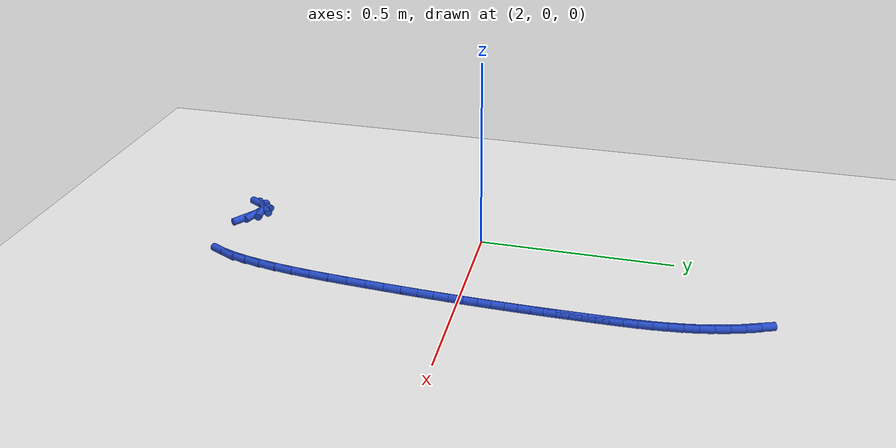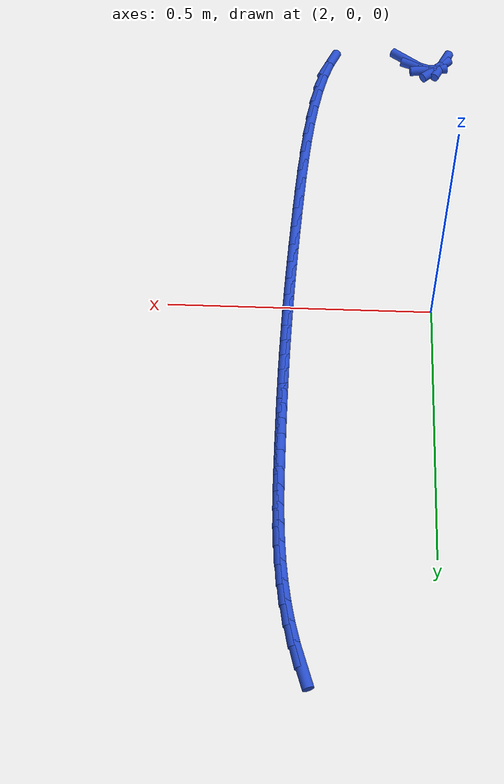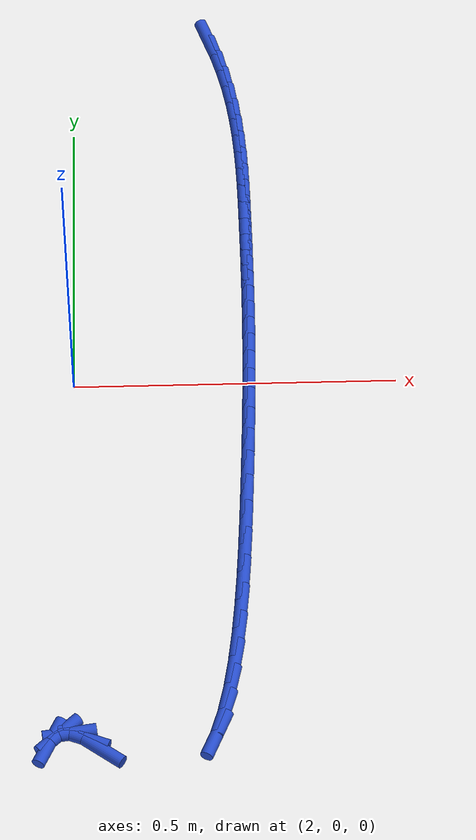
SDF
<sdf version="1.6">
 <world name="default">
  <model name="ground_plane">
   <static>1</static>
   <link name="link">
    <collision name="collision">
     <geometry><plane><normal>0 0 1</normal><size>100 100</size></plane></geometry>
     <surface><friction><ode><mu>100</mu><mu2>50</mu2></ode></friction></surface>
    </collision>
    <visual name="visual">
     <cast_shadows>0</cast_shadows>
     <geometry><plane><normal>0 0 1</normal><size>100 100</size></plane></geometry>
     <material>
      <script><uri>file://media/materials/scripts/gazebo.material</uri><name>Gazebo/WhiteGlow</name></script>
     </material>
    </visual>
   </link>
  </model>
  <model name="line">
   <link name="link_105">
    <pose>2.2223579998884144 0.6914905662198797 0.01 0 1.57 -1.2411940380463125</pose>
    <collision name="collision">
     <geometry><cylinder><radius>0.01</radius><length>0.08</length></cylinder></geometry>
    </collision>
    <visual name="visual">
     <material>
      <script><name>Gazebo/Blue</name><uri>file://media/materials/scripts/gazebo.material</uri></script>
     </material>
     <geometry><cylinder><radius>0.01</radius><length>0.08</length></cylinder></geometry>
    </visual>
   </link>
   <link name="link_106">
    <pose>2.2339339424836546 0.6576507516133844 0.01 0 1.57 -1.296427701397356</pose>
    <collision name="collision">
     <geometry><cylinder><radius>0.01</radius><length>0.08</length></cylinder></geometry>
    </collision>
    <visual name="visual">
     <material>
      <script><name>Gazebo/Blue</name><uri>file://media/materials/scripts/gazebo.material</uri></script>
     </material>
     <geometry><cylinder><radius>0.01</radius><length>0.08</length></cylinder></geometry>
    </visual>
   </link>
   <link name="link_107">
    <pose>2.243558248748905 0.6234573902105164 0.01 0 1.57 -1.3463678781463506</pose>
    <collision name="collision">
     <geometry><cylinder><radius>0.01</radius><length>0.08</length></cylinder></geometry>
    </collision>
    <visual name="visual">
     <material>
      <script><name>Gazebo/Blue</name><uri>file://media/materials/scripts/gazebo.material</uri></script>
     </material>
     <geometry><cylinder><radius>0.01</radius><length>0.08</length></cylinder></geometry>
    </visual>
   </link>
   <link name="link_108">
    <pose>2.2514173075244597 0.5890292019642024 0.01 0 1.57 -1.3909591024430785</pose>
    <collision name="collision">
     <geometry><cylinder><radius>0.01</radius><length>0.08</length></cylinder></geometry>
    </collision>
    <visual name="visual">
     <material>
      <script><name>Gazebo/Blue</name><uri>file://media/materials/scripts/gazebo.material</uri></script>
     </material>
     <geometry><cylinder><radius>0.01</radius><length>0.08</length></cylinder></geometry>
    </visual>
   </link>
   <link name="link_109">
    <pose>2.2576975076506174 0.5544849068273692 0.01 0 1.57 -1.4302271881954076</pose>
    <collision name="collision">
     <geometry><cylinder><radius>0.01</radius><length>0.08</length></cylinder></geometry>
    </collision>
    <visual name="visual">
     <material>
      <script><name>Gazebo/Blue</name><uri>file://media/materials/scripts/gazebo.material</uri></script>
     </material>
     <geometry><cylinder><radius>0.01</radius><length>0.08</length></cylinder></geometry>
    </visual>
   </link>
   <link name="link_110">
    <pose>2.2625852379676723 0.5199432247529437 0.01 0 1.57 -1.4642400373870224</pose>
    <collision name="collision">
     <geometry><cylinder><radius>0.01</radius><length>0.08</length></cylinder></geometry>
    </collision>
    <visual name="visual">
     <material>
      <script><name>Gazebo/Blue</name><uri>file://media/materials/scripts/gazebo.material</uri></script>
     </material>
     <geometry><cylinder><radius>0.01</radius><length>0.08</length></cylinder></geometry>
    </visual>
   </link>
   <link name="link_111">
    <pose>2.266266887315922 0.4855228756938525 0.01 0 1.57 -1.4930733345964429</pose>
    <collision name="collision">
     <geometry><cylinder><radius>0.01</radius><length>0.08</length></cylinder></geometry>
    </collision>
    <visual name="visual">
     <material>
      <script><name>Gazebo/Blue</name><uri>file://media/materials/scripts/gazebo.material</uri></script>
     </material>
     <geometry><cylinder><radius>0.01</radius><length>0.08</length></cylinder></geometry>
    </visual>
   </link>
   <link name="link_112">
    <pose>2.2689288445356617 0.4513425796030223 0.01 0 1.57 -1.516781162360011</pose>
    <collision name="collision">
     <geometry><cylinder><radius>0.01</radius><length>0.08</length></cylinder></geometry>
    </collision>
    <visual name="visual">
     <material>
      <script><name>Gazebo/Blue</name><uri>file://media/materials/scripts/gazebo.material</uri></script>
     </material>
     <geometry><cylinder><radius>0.01</radius><length>0.08</length></cylinder></geometry>
    </visual>
   </link>
   <link name="link_113">
    <pose>2.270757498467189 0.41752105643338 0.01 0 1.57 -1.535370342874431</pose>
    <collision name="collision">
     <geometry><cylinder><radius>0.01</radius><length>0.08</length></cylinder></geometry>
    </collision>
    <visual name="visual">
     <material>
      <script><name>Gazebo/Blue</name><uri>file://media/materials/scripts/gazebo.material</uri></script>
     </material>
     <geometry><cylinder><radius>0.01</radius><length>0.08</length></cylinder></geometry>
    </visual>
   </link>
   <link name="link_114">
    <pose>2.2719392379507983 0.38417702613785243 0.01 0 1.57 -1.548776620946159</pose>
    <collision name="collision">
     <geometry><cylinder><radius>0.01</radius><length>0.08</length></cylinder></geometry>
    </collision>
    <visual name="visual">
     <material>
      <script><name>Gazebo/Blue</name><uri>file://media/materials/scripts/gazebo.material</uri></script>
     </material>
     <geometry><cylinder><radius>0.01</radius><length>0.08</length></cylinder></geometry>
    </visual>
   </link>
   <link name="link_115">
    <pose>2.272660451826787 0.351429208669366 0.01 0 1.57 -1.5568404159464497</pose>
    <collision name="collision">
     <geometry><cylinder><radius>0.01</radius><length>0.08</length></cylinder></geometry>
    </collision>
    <visual name="visual">
     <material>
      <script><name>Gazebo/Blue</name><uri>file://media/materials/scripts/gazebo.material</uri></script>
     </material>
     <geometry><cylinder><radius>0.01</radius><length>0.08</length></cylinder></geometry>
    </visual>
   </link>
   <link name="link_116">
    <pose>2.2731075289354514 0.3193963239808477 0.01 0 1.57 -1.5598694993901652</pose>
    <collision name="collision">
     <geometry><cylinder><radius>0.01</radius><length>0.08</length></cylinder></geometry>
    </collision>
    <visual name="visual">
     <material>
      <script><name>Gazebo/Blue</name><uri>file://media/materials/scripts/gazebo.material</uri></script>
     </material>
     <geometry><cylinder><radius>0.01</radius><length>0.08</length></cylinder></geometry>
    </visual>
   </link>
   <link name="link_117">
    <pose>2.273448784130913 0.2881666173823809 0.01 0 1.57 -1.5617682558393209</pose>
    <collision name="collision">
     <geometry><cylinder><radius>0.01</radius><length>0.08</length></cylinder></geometry>
    </collision>
    <visual name="visual">
     <material>
      <script><name>Gazebo/Blue</name><uri>file://media/materials/scripts/gazebo.material</uri></script>
     </material>
     <geometry><cylinder><radius>0.01</radius><length>0.08</length></cylinder></geometry>
    </visual>
   </link>
   <link name="link_118">
    <pose>2.2737246346912645 0.2576126854105982 0.01 0 1.57 -1.5642948234435514</pose>
    <collision name="collision">
     <geometry><cylinder><radius>0.01</radius><length>0.08</length></cylinder></geometry>
    </collision>
    <visual name="visual">
     <material>
      <script><name>Gazebo/Blue</name><uri>file://media/materials/scripts/gazebo.material</uri></script>
     </material>
     <geometry><cylinder><radius>0.01</radius><length>0.08</length></cylinder></geometry>
    </visual>
   </link>
   <link name="link_119">
    <pose>2.273920323536049 0.22751409482692447 0.01 0 1.57 -1.5674293252845697</pose>
    <collision name="collision">
     <geometry><cylinder><radius>0.01</radius><length>0.08</length></cylinder></geometry>
    </collision>
    <visual name="visual">
     <material>
      <script><name>Gazebo/Blue</name><uri>file://media/materials/scripts/gazebo.material</uri></script>
     </material>
     <geometry><cylinder><radius>0.01</radius><length>0.08</length></cylinder></geometry>
    </visual>
   </link>
   <link name="link_120">
    <pose>2.274020876213928 0.19765004588260118 0.01 0 1.57 1.570476131092246</pose>
    <collision name="collision">
     <geometry><cylinder><radius>0.01</radius><length>0.08</length></cylinder></geometry>
    </collision>
    <visual name="visual">
     <material>
      <script><name>Gazebo/Blue</name><uri>file://media/materials/scripts/gazebo.material</uri></script>
     </material>
     <geometry><cylinder><radius>0.01</radius><length>0.08</length></cylinder></geometry>
    </visual>
   </link>
   <link name="link_121">
    <pose>2.2740113182735597 0.16779973882886837 0.01 0 1.57 1.5663168220290515</pose>
    <collision name="collision">
     <geometry><cylinder><radius>0.01</radius><length>0.08</length></cylinder></geometry>
    </collision>
    <visual name="visual">
     <material>
      <script><name>Gazebo/Blue</name><uri>file://media/materials/scripts/gazebo.material</uri></script>
     </material>
     <geometry><cylinder><radius>0.01</radius><length>0.08</length></cylinder></geometry>
    </visual>
   </link>
   <link name="link_122">
    <pose>2.2738766752636064 0.13774237391696717 0.01 0 1.57 1.5617855644180827</pose>
    <collision name="collision">
     <geometry><cylinder><radius>0.01</radius><length>0.08</length></cylinder></geometry>
    </collision>
    <visual name="visual">
     <material>
      <script><name>Gazebo/Blue</name><uri>file://media/materials/scripts/gazebo.material</uri></script>
     </material>
     <geometry><cylinder><radius>0.01</radius><length>0.08</length></cylinder></geometry>
    </visual>
   </link>
   <link name="link_123">
    <pose>2.273601972732727 0.10725715139813857 0.01 0 1.57 1.5569943458974227</pose>
    <collision name="collision">
     <geometry><cylinder><radius>0.01</radius><length>0.08</length></cylinder></geometry>
    </collision>
    <visual name="visual">
     <material>
      <script><name>Gazebo/Blue</name><uri>file://media/materials/scripts/gazebo.material</uri></script>
     </material>
     <geometry><cylinder><radius>0.01</radius><length>0.08</length></cylinder></geometry>
    </visual>
   </link>
   <link name="link_124">
    <pose>2.2731722362295828 0.0761232715236233 0.01 0 1.57 1.5520584453760513</pose>
    <collision name="collision">
     <geometry><cylinder><radius>0.01</radius><length>0.08</length></cylinder></geometry>
    </collision>
    <visual name="visual">
     <material>
      <script><name>Gazebo/Blue</name><uri>file://media/materials/scripts/gazebo.material</uri></script>
     </material>
     <geometry><cylinder><radius>0.01</radius><length>0.08</length></cylinder></geometry>
    </visual>
   </link>
   <link name="link_125">
    <pose>2.2725724913028333 0.04411993454466227 0.01 0 1.57 1.5470883917432983</pose>
    <collision name="collision">
     <geometry><cylinder><radius>0.01</radius><length>0.08</length></cylinder></geometry>
    </collision>
    <visual name="visual">
     <material>
      <script><name>Gazebo/Blue</name><uri>file://media/materials/scripts/gazebo.material</uri></script>
     </material>
     <geometry><cylinder><radius>0.01</radius><length>0.08</length></cylinder></geometry>
    </visual>
   </link>
   <link name="link_126">
    <pose>2.27178776350114 0.011026340712496294 0.01 0 1.57 1.5421834392581335</pose>
    <collision name="collision">
     <geometry><cylinder><radius>0.01</radius><length>0.08</length></cylinder></geometry>
    </collision>
    <visual name="visual">
     <material>
      <script><name>Gazebo/Blue</name><uri>file://media/materials/scripts/gazebo.material</uri></script>
     </material>
     <geometry><cylinder><radius>0.01</radius><length>0.08</length></cylinder></geometry>
    </visual>
   </link>
   <link name="link_127">
    <pose>2.2708030783731625 -0.023378309721633794 0.01 0 1.57 1.5374271509549273</pose>
    <collision name="collision">
     <geometry><cylinder><radius>0.01</radius><length>0.08</length></cylinder></geometry>
    </collision>
    <visual name="visual">
     <material>
      <script><name>Gazebo/Blue</name><uri>file://media/materials/scripts/gazebo.material</uri></script>
     </material>
     <geometry><cylinder><radius>0.01</radius><length>0.08</length></cylinder></geometry>
    </visual>
   </link>
   <link name="link_128">
    <pose>2.2696034614675615 -0.05931481650648718 0.01 0 1.57 1.5328852113017062</pose>
    <collision name="collision">
     <geometry><cylinder><radius>0.01</radius><length>0.08</length></cylinder></geometry>
    </collision>
    <visual name="visual">
     <material>
      <script><name>Gazebo/Blue</name><uri>file://media/materials/scripts/gazebo.material</uri></script>
     </material>
     <geometry><cylinder><radius>0.01</radius><length>0.08</length></cylinder></geometry>
    </visual>
   </link>
   <link name="link_129">
    <pose>2.268173938332997 -0.09700397939082293 0.01 0 1.57 1.5286052103125436</pose>
    <collision name="collision">
     <geometry><cylinder><radius>0.01</radius><length>0.08</length></cylinder></geometry>
    </collision>
    <visual name="visual">
     <material>
      <script><name>Gazebo/Blue</name><uri>file://media/materials/scripts/gazebo.material</uri></script>
     </material>
     <geometry><cylinder><radius>0.01</radius><length>0.08</length></cylinder></geometry>
    </visual>
   </link>
   <link name="link_130">
    <pose>2.266499534518129 -0.13666659812340026 0.01 0 1.57 1.5246179180766588</pose>
    <collision name="collision">
     <geometry><cylinder><radius>0.01</radius><length>0.08</length></cylinder></geometry>
    </collision>
    <visual name="visual">
     <material>
      <script><name>Gazebo/Blue</name><uri>file://media/materials/scripts/gazebo.material</uri></script>
     </material>
     <geometry><cylinder><radius>0.01</radius><length>0.08</length></cylinder></geometry>
    </visual>
   </link>
   <link name="link_131">
    <pose>2.2645652755716186 -0.17852347245297834 0.01 0 1.57 1.5209395018729328</pose>
    <collision name="collision">
     <geometry><cylinder><radius>0.01</radius><length>0.08</length></cylinder></geometry>
    </collision>
    <visual name="visual">
     <material>
      <script><name>Gazebo/Blue</name><uri>file://media/materials/scripts/gazebo.material</uri></script>
     </material>
     <geometry><cylinder><radius>0.01</radius><length>0.08</length></cylinder></geometry>
    </visual>
   </link>
   <link name="link_132">
    <pose>2.2623561870421254 -0.22279540212831628 0.01 0 1.57 1.517217216244969</pose>
    <collision name="collision">
     <geometry><cylinder><radius>0.01</radius><length>0.08</length></cylinder></geometry>
    </collision>
    <visual name="visual">
     <material>
      <script><name>Gazebo/Blue</name><uri>file://media/materials/scripts/gazebo.material</uri></script>
     </material>
     <geometry><cylinder><radius>0.01</radius><length>0.08</length></cylinder></geometry>
    </visual>
   </link>
   <link name="link_133">
    <pose>2.2598449969739054 -0.2696193715266864 0.01 0 1.57 1.51049156796722</pose>
    <collision name="collision">
     <geometry><cylinder><radius>0.01</radius><length>0.08</length></cylinder></geometry>
    </collision>
    <visual name="visual">
     <material>
      <script><name>Gazebo/Blue</name><uri>file://media/materials/scripts/gazebo.material</uri></script>
     </material>
     <geometry><cylinder><radius>0.01</radius><length>0.08</length></cylinder></geometry>
    </visual>
   </link>
   <link name="link_134">
    <pose>2.2568989223644285 -0.31841323964107243 0.01 0 1.57 1.4993058086925917</pose>
    <collision name="collision">
     <geometry><cylinder><radius>0.01</radius><length>0.08</length></cylinder></geometry>
    </collision>
    <visual name="visual">
     <material>
      <script><name>Gazebo/Blue</name><uri>file://media/materials/scripts/gazebo.material</uri></script>
     </material>
     <geometry><cylinder><radius>0.01</radius><length>0.08</length></cylinder></geometry>
    </visual>
   </link>
   <link name="link_135">
    <pose>2.253331492037457 -0.3682289461628271 0.01 0 1.57 1.4833076357004709</pose>
    <collision name="collision">
     <geometry><cylinder><radius>0.01</radius><length>0.08</length></cylinder></geometry>
    </collision>
    <visual name="visual">
     <material>
      <script><name>Gazebo/Blue</name><uri>file://media/materials/scripts/gazebo.material</uri></script>
     </material>
     <geometry><cylinder><radius>0.01</radius><length>0.08</length></cylinder></geometry>
    </visual>
   </link>
   <link name="link_136">
    <pose>2.2489558098264157 -0.4181155342018657 0.01 0 1.57 1.4616377518656896</pose>
    <collision name="collision">
     <geometry><cylinder><radius>0.01</radius><length>0.08</length></cylinder></geometry>
    </collision>
    <visual name="visual">
     <material>
      <script><name>Gazebo/Blue</name><uri>file://media/materials/scripts/gazebo.material</uri></script>
     </material>
     <geometry><cylinder><radius>0.01</radius><length>0.08</length></cylinder></geometry>
    </visual>
   </link>
   <link name="link_137">
    <pose>2.243584979564726 -0.46712204686810355 0.01 0 1.57 1.4327752378607934</pose>
    <collision name="collision">
     <geometry><cylinder><radius>0.01</radius><length>0.08</length></cylinder></geometry>
    </collision>
    <visual name="visual">
     <material>
      <script><name>Gazebo/Blue</name><uri>file://media/materials/scripts/gazebo.material</uri></script>
     </material>
     <geometry><cylinder><radius>0.01</radius><length>0.08</length></cylinder></geometry>
    </visual>
   </link>
   <link name="link_138">
    <pose>2.237032105085813 -0.5142975272714562 0.01 0 1.57 1.3942095951741276</pose>
    <collision name="collision">
     <geometry><cylinder><radius>0.01</radius><length>0.08</length></cylinder></geometry>
    </collision>
    <visual name="visual">
     <material>
      <script><name>Gazebo/Blue</name><uri>file://media/materials/scripts/gazebo.material</uri></script>
     </material>
     <geometry><cylinder><radius>0.01</radius><length>0.08</length></cylinder></geometry>
    </visual>
   </link>
   <link name="link_139">
    <pose>2.2291102902230993 -0.5586910185218387 0.01 0 1.57 1.3417931940346643</pose>
    <collision name="collision">
     <geometry><cylinder><radius>0.01</radius><length>0.08</length></cylinder></geometry>
    </collision>
    <visual name="visual">
     <material>
      <script><name>Gazebo/Blue</name><uri>file://media/materials/scripts/gazebo.material</uri></script>
     </material>
     <geometry><cylinder><radius>0.01</radius><length>0.08</length></cylinder></geometry>
    </visual>
   </link>
   <link name="link_140">
    <pose>2.2196326388100087 -0.5993515637291669 0.01 0 1.57 1.2684766781677497</pose>
    <collision name="collision">
     <geometry><cylinder><radius>0.01</radius><length>0.08</length></cylinder></geometry>
    </collision>
    <visual name="visual">
     <material>
      <script><name>Gazebo/Blue</name><uri>file://media/materials/scripts/gazebo.material</uri></script>
     </material>
     <geometry><cylinder><radius>0.01</radius><length>0.08</length></cylinder></geometry>
    </visual>
   </link>
   <link name="link_141">
    <pose>2.208412254679965 -0.6353282060033557 0.01 0 1.57 1.1618355766898376</pose>
    <collision name="collision">
     <geometry><cylinder><radius>0.01</radius><length>0.08</length></cylinder></geometry>
    </collision>
    <visual name="visual">
     <material>
      <script><name>Gazebo/Blue</name><uri>file://media/materials/scripts/gazebo.material</uri></script>
     </material>
     <geometry><cylinder><radius>0.01</radius><length>0.08</length></cylinder></geometry>
    </visual>
   </link>
   <link name="link_149">
    <pose>2.038493535001295 -0.6551907953297033 0.01 0 1.57 -0.6349154006253478</pose>
    <collision name="collision">
     <geometry><cylinder><radius>0.01</radius><length>0.08</length></cylinder></geometry>
    </collision>
    <visual name="visual">
     <material>
      <script><name>Gazebo/Blue</name><uri>file://media/materials/scripts/gazebo.material</uri></script>
     </material>
     <geometry><cylinder><radius>0.01</radius><length>0.08</length></cylinder></geometry>
    </visual>
   </link>
   <link name="link_150">
    <pose>2.0135454871162595 -0.6368123084891202 0.01 0 1.57 -0.37528190863316485</pose>
    <collision name="collision">
     <geometry><cylinder><radius>0.01</radius><length>0.08</length></cylinder></geometry>
    </collision>
    <visual name="visual">
     <material>
      <script><name>Gazebo/Blue</name><uri>file://media/materials/scripts/gazebo.material</uri></script>
     </material>
     <geometry><cylinder><radius>0.01</radius><length>0.08</length></cylinder></geometry>
    </visual>
   </link>
   <link name="link_151">
    <pose>1.993198938195167 -0.6287967407760975 0.01 0 1.57 0.14096237516827245</pose>
    <collision name="collision">
     <geometry><cylinder><radius>0.01</radius><length>0.08</length></cylinder></geometry>
    </collision>
    <visual name="visual">
     <material>
      <script><name>Gazebo/Blue</name><uri>file://media/materials/scripts/gazebo.material</uri></script>
     </material>
     <geometry><cylinder><radius>0.01</radius><length>0.08</length></cylinder></geometry>
    </visual>
   </link>
   <link name="link_152">
    <pose>1.9771510378941621 -0.6310739942433858 0.01 0 1.57 0.7484120509855717</pose>
    <collision name="collision">
     <geometry><cylinder><radius>0.01</radius><length>0.08</length></cylinder></geometry>
    </collision>
    <visual name="visual">
     <material>
      <script><name>Gazebo/Blue</name><uri>file://media/materials/scripts/gazebo.material</uri></script>
     </material>
     <geometry><cylinder><radius>0.01</radius><length>0.08</length></cylinder></geometry>
    </visual>
   </link>
   <link name="link_153">
    <pose>1.9647209155291352 -0.6426170378598762 0.01 0 1.57 1.1233605883638536</pose>
    <collision name="collision">
     <geometry><cylinder><radius>0.01</radius><length>0.08</length></cylinder></geometry>
    </collision>
    <visual name="visual">
     <material>
      <script><name>Gazebo/Blue</name><uri>file://media/materials/scripts/gazebo.material</uri></script>
     </material>
     <geometry><cylinder><radius>0.01</radius><length>0.08</length></cylinder></geometry>
    </visual>
   </link>
  </model>
 </world>
</sdf>
